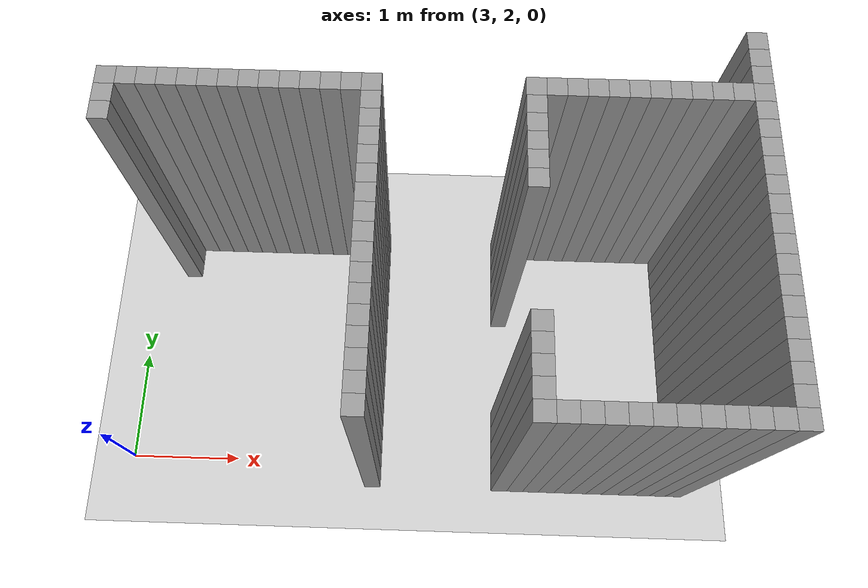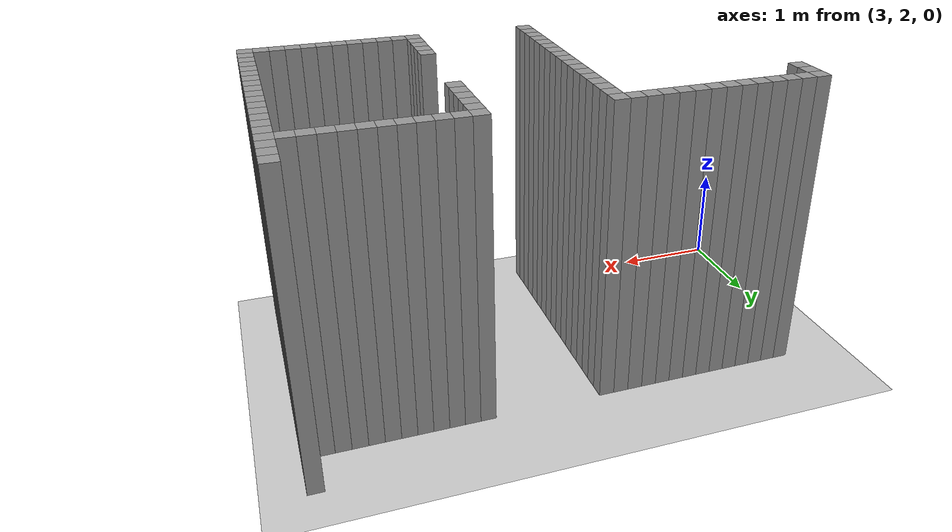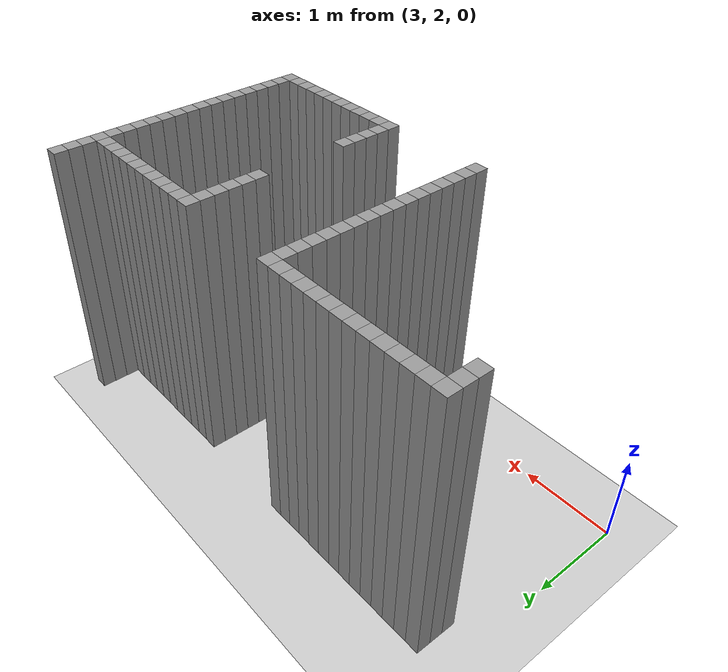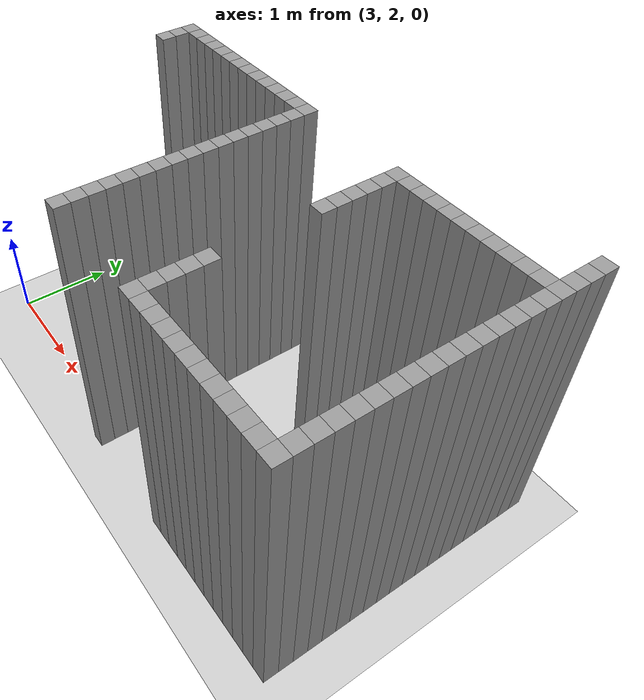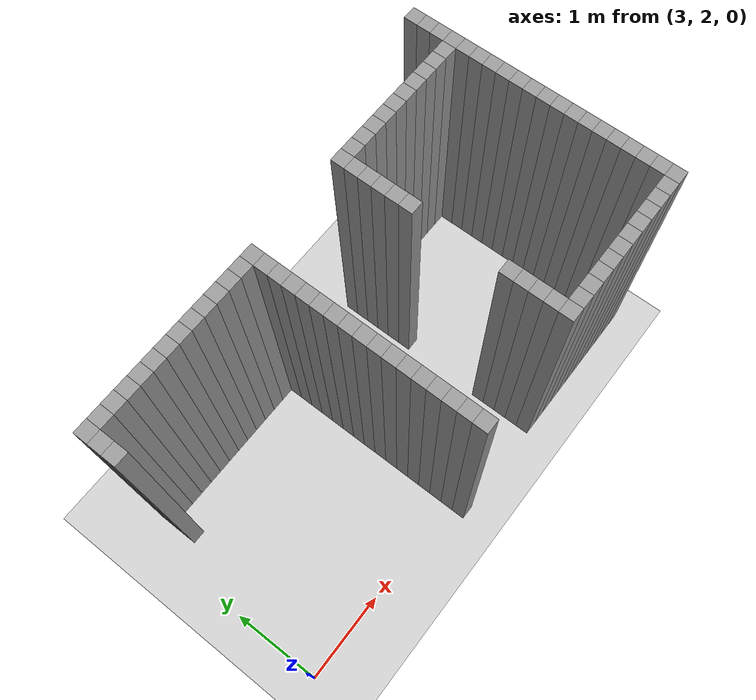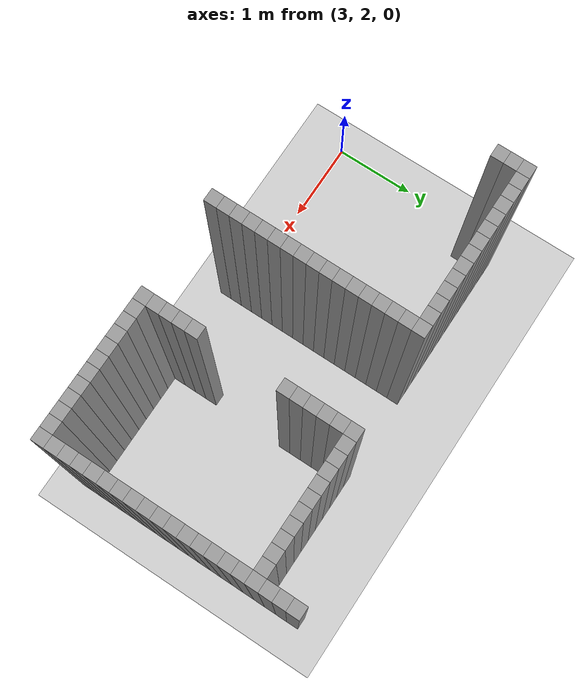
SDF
<sdf version="1.7">
 <world name="default">
  <model name="ground_plane">
   <static>1</static>
   <link name="link">
    <collision name="collision">
     <geometry><plane><normal>0 0 1</normal><size>100 100</size></plane></geometry>
     <surface>
      <contact><collide_bitmask>65535</collide_bitmask></contact>
      <friction><ode><mu>100</mu><mu2>50</mu2></ode></friction>
     </surface>
    </collision>
    <visual name="visual">
     <cast_shadows>0</cast_shadows>
     <geometry><plane><normal>0 0 1</normal><size>100 100</size></plane></geometry>
     <material>
      <script><uri>file://media/materials/scripts/gazebo.material</uri><name>Gazebo/Grey</name></script>
     </material>
    </visual>
   </link>
  </model>
  <model name="image45003">
   <pose>-1 -1 0 0 -0 0</pose>
   <link name="Wall_249">
    <collision name="Wall_249_Collision">
     <geometry><box><size>0.15 0.15 3</size></box></geometry>
     <pose>0 0 1.5 0 -0 0</pose>
    </collision>
    <visual name="Wall_249_Visual">
     <pose>0 0 1.5 0 -0 0</pose>
     <geometry><box><size>0.15 0.15 3</size></box></geometry>
     <material>
      <script><uri>file://media/materials/scripts/gazebo.material</uri><name>Gazebo/Grey</name></script>
      <ambient>1 1 1 1</ambient>
     </material>
     <meta><layer>0</layer></meta>
    </visual>
    <pose>4.35 4.95 0 0 -0 0</pose>
   </link>
   <link name="Wall_250">
    <collision name="Wall_250_Collision">
     <geometry><box><size>0.15 0.15 3</size></box></geometry>
     <pose>0 0 1.5 0 -0 0</pose>
    </collision>
    <visual name="Wall_250_Visual">
     <pose>0 0 1.5 0 -0 0</pose>
     <geometry><box><size>0.15 0.15 3</size></box></geometry>
     <material>
      <script><uri>file://media/materials/scripts/gazebo.material</uri><name>Gazebo/Grey</name></script>
      <ambient>1 1 1 1</ambient>
     </material>
     <meta><layer>0</layer></meta>
    </visual>
    <pose>4.35 5.1 0 0 -0 0</pose>
   </link>
   <link name="Wall_251">
    <collision name="Wall_251_Collision">
     <geometry><box><size>0.15 0.15 3</size></box></geometry>
     <pose>0 0 1.5 0 -0 0</pose>
    </collision>
    <visual name="Wall_251_Visual">
     <pose>0 0 1.5 0 -0 0</pose>
     <geometry><box><size>0.15 0.15 3</size></box></geometry>
     <material>
      <script><uri>file://media/materials/scripts/gazebo.material</uri><name>Gazebo/Grey</name></script>
      <ambient>1 1 1 1</ambient>
     </material>
     <meta><layer>0</layer></meta>
    </visual>
    <pose>4.35 5.25 0 0 -0 0</pose>
   </link>
   <link name="Wall_257">
    <collision name="Wall_257_Collision">
     <geometry><box><size>0.15 0.15 3</size></box></geometry>
     <pose>0 0 1.5 0 -0 0</pose>
    </collision>
    <visual name="Wall_257_Visual">
     <pose>0 0 1.5 0 -0 0</pose>
     <geometry><box><size>0.15 0.15 3</size></box></geometry>
     <material>
      <script><uri>file://media/materials/scripts/gazebo.material</uri><name>Gazebo/Grey</name></script>
      <ambient>1 1 1 1</ambient>
     </material>
     <meta><layer>0</layer></meta>
    </visual>
    <pose>4.5 5.25 0 0 -0 0</pose>
   </link>
   <link name="Wall_263">
    <collision name="Wall_263_Collision">
     <geometry><box><size>0.15 0.15 3</size></box></geometry>
     <pose>0 0 1.5 0 -0 0</pose>
    </collision>
    <visual name="Wall_263_Visual">
     <pose>0 0 1.5 0 -0 0</pose>
     <geometry><box><size>0.15 0.15 3</size></box></geometry>
     <material>
      <script><uri>file://media/materials/scripts/gazebo.material</uri><name>Gazebo/Grey</name></script>
      <ambient>1 1 1 1</ambient>
     </material>
     <meta><layer>0</layer></meta>
    </visual>
    <pose>4.6499999999999995 5.25 0 0 -0 0</pose>
   </link>
   <link name="Wall_268">
    <collision name="Wall_268_Collision">
     <geometry><box><size>0.15 0.15 3</size></box></geometry>
     <pose>0 0 1.5 0 -0 0</pose>
    </collision>
    <visual name="Wall_268_Visual">
     <pose>0 0 1.5 0 -0 0</pose>
     <geometry><box><size>0.15 0.15 3</size></box></geometry>
     <material>
      <script><uri>file://media/materials/scripts/gazebo.material</uri><name>Gazebo/Grey</name></script>
      <ambient>1 1 1 1</ambient>
     </material>
     <meta><layer>0</layer></meta>
    </visual>
    <pose>4.8 5.25 0 0 -0 0</pose>
   </link>
   <link name="Wall_273">
    <collision name="Wall_273_Collision">
     <geometry><box><size>0.15 0.15 3</size></box></geometry>
     <pose>0 0 1.5 0 -0 0</pose>
    </collision>
    <visual name="Wall_273_Visual">
     <pose>0 0 1.5 0 -0 0</pose>
     <geometry><box><size>0.15 0.15 3</size></box></geometry>
     <material>
      <script><uri>file://media/materials/scripts/gazebo.material</uri><name>Gazebo/Grey</name></script>
      <ambient>1 1 1 1</ambient>
     </material>
     <meta><layer>0</layer></meta>
    </visual>
    <pose>4.95 5.25 0 0 -0 0</pose>
   </link>
   <link name="Wall_278">
    <collision name="Wall_278_Collision">
     <geometry><box><size>0.15 0.15 3</size></box></geometry>
     <pose>0 0 1.5 0 -0 0</pose>
    </collision>
    <visual name="Wall_278_Visual">
     <pose>0 0 1.5 0 -0 0</pose>
     <geometry><box><size>0.15 0.15 3</size></box></geometry>
     <material>
      <script><uri>file://media/materials/scripts/gazebo.material</uri><name>Gazebo/Grey</name></script>
      <ambient>1 1 1 1</ambient>
     </material>
     <meta><layer>0</layer></meta>
    </visual>
    <pose>5.1 5.25 0 0 -0 0</pose>
   </link>
   <link name="Wall_282">
    <collision name="Wall_282_Collision">
     <geometry><box><size>0.15 0.15 3</size></box></geometry>
     <pose>0 0 1.5 0 -0 0</pose>
    </collision>
    <visual name="Wall_282_Visual">
     <pose>0 0 1.5 0 -0 0</pose>
     <geometry><box><size>0.15 0.15 3</size></box></geometry>
     <material>
      <script><uri>file://media/materials/scripts/gazebo.material</uri><name>Gazebo/Grey</name></script>
      <ambient>1 1 1 1</ambient>
     </material>
     <meta><layer>0</layer></meta>
    </visual>
    <pose>5.25 5.25 0 0 -0 0</pose>
   </link>
   <link name="Wall_285">
    <collision name="Wall_285_Collision">
     <geometry><box><size>0.15 0.15 3</size></box></geometry>
     <pose>0 0 1.5 0 -0 0</pose>
    </collision>
    <visual name="Wall_285_Visual">
     <pose>0 0 1.5 0 -0 0</pose>
     <geometry><box><size>0.15 0.15 3</size></box></geometry>
     <material>
      <script><uri>file://media/materials/scripts/gazebo.material</uri><name>Gazebo/Grey</name></script>
      <ambient>1 1 1 1</ambient>
     </material>
     <meta><layer>0</layer></meta>
    </visual>
    <pose>5.3999999999999995 5.25 0 0 -0 0</pose>
   </link>
   <link name="Wall_288">
    <collision name="Wall_288_Collision">
     <geometry><box><size>0.15 0.15 3</size></box></geometry>
     <pose>0 0 1.5 0 -0 0</pose>
    </collision>
    <visual name="Wall_288_Visual">
     <pose>0 0 1.5 0 -0 0</pose>
     <geometry><box><size>0.15 0.15 3</size></box></geometry>
     <material>
      <script><uri>file://media/materials/scripts/gazebo.material</uri><name>Gazebo/Grey</name></script>
      <ambient>1 1 1 1</ambient>
     </material>
     <meta><layer>0</layer></meta>
    </visual>
    <pose>5.55 5.25 0 0 -0 0</pose>
   </link>
   <link name="Wall_292">
    <collision name="Wall_292_Collision">
     <geometry><box><size>0.15 0.15 3</size></box></geometry>
     <pose>0 0 1.5 0 -0 0</pose>
    </collision>
    <visual name="Wall_292_Visual">
     <pose>0 0 1.5 0 -0 0</pose>
     <geometry><box><size>0.15 0.15 3</size></box></geometry>
     <material>
      <script><uri>file://media/materials/scripts/gazebo.material</uri><name>Gazebo/Grey</name></script>
      <ambient>1 1 1 1</ambient>
     </material>
     <meta><layer>0</layer></meta>
    </visual>
    <pose>5.7 5.25 0 0 -0 0</pose>
   </link>
   <link name="Wall_296">
    <collision name="Wall_296_Collision">
     <geometry><box><size>0.15 0.15 3</size></box></geometry>
     <pose>0 0 1.5 0 -0 0</pose>
    </collision>
    <visual name="Wall_296_Visual">
     <pose>0 0 1.5 0 -0 0</pose>
     <geometry><box><size>0.15 0.15 3</size></box></geometry>
     <material>
      <script><uri>file://media/materials/scripts/gazebo.material</uri><name>Gazebo/Grey</name></script>
      <ambient>1 1 1 1</ambient>
     </material>
     <meta><layer>0</layer></meta>
    </visual>
    <pose>5.85 5.25 0 0 -0 0</pose>
   </link>
   <link name="Wall_300">
    <collision name="Wall_300_Collision">
     <geometry><box><size>0.15 0.15 3</size></box></geometry>
     <pose>0 0 1.5 0 -0 0</pose>
    </collision>
    <visual name="Wall_300_Visual">
     <pose>0 0 1.5 0 -0 0</pose>
     <geometry><box><size>0.15 0.15 3</size></box></geometry>
     <material>
      <script><uri>file://media/materials/scripts/gazebo.material</uri><name>Gazebo/Grey</name></script>
      <ambient>1 1 1 1</ambient>
     </material>
     <meta><layer>0</layer></meta>
    </visual>
    <pose>6.0 5.25 0 0 -0 0</pose>
   </link>
   <link name="Wall_304">
    <collision name="Wall_304_Collision">
     <geometry><box><size>0.15 0.15 3</size></box></geometry>
     <pose>0 0 1.5 0 -0 0</pose>
    </collision>
    <visual name="Wall_304_Visual">
     <pose>0 0 1.5 0 -0 0</pose>
     <geometry><box><size>0.15 0.15 3</size></box></geometry>
     <material>
      <script><uri>file://media/materials/scripts/gazebo.material</uri><name>Gazebo/Grey</name></script>
      <ambient>1 1 1 1</ambient>
     </material>
     <meta><layer>0</layer></meta>
    </visual>
    <pose>6.1499999999999995 5.25 0 0 -0 0</pose>
   </link>
   <link name="Wall_308">
    <collision name="Wall_308_Collision">
     <geometry><box><size>0.15 0.15 3</size></box></geometry>
     <pose>0 0 1.5 0 -0 0</pose>
    </collision>
    <visual name="Wall_308_Visual">
     <pose>0 0 1.5 0 -0 0</pose>
     <geometry><box><size>0.15 0.15 3</size></box></geometry>
     <material>
      <script><uri>file://media/materials/scripts/gazebo.material</uri><name>Gazebo/Grey</name></script>
      <ambient>1 1 1 1</ambient>
     </material>
     <meta><layer>0</layer></meta>
    </visual>
    <pose>6.3 2.85 0 0 -0 0</pose>
   </link>
   <link name="Wall_309">
    <collision name="Wall_309_Collision">
     <geometry><box><size>0.15 0.15 3</size></box></geometry>
     <pose>0 0 1.5 0 -0 0</pose>
    </collision>
    <visual name="Wall_309_Visual">
     <pose>0 0 1.5 0 -0 0</pose>
     <geometry><box><size>0.15 0.15 3</size></box></geometry>
     <material>
      <script><uri>file://media/materials/scripts/gazebo.material</uri><name>Gazebo/Grey</name></script>
      <ambient>1 1 1 1</ambient>
     </material>
     <meta><layer>0</layer></meta>
    </visual>
    <pose>6.3 3.0 0 0 -0 0</pose>
   </link>
   <link name="Wall_310">
    <collision name="Wall_310_Collision">
     <geometry><box><size>0.15 0.15 3</size></box></geometry>
     <pose>0 0 1.5 0 -0 0</pose>
    </collision>
    <visual name="Wall_310_Visual">
     <pose>0 0 1.5 0 -0 0</pose>
     <geometry><box><size>0.15 0.15 3</size></box></geometry>
     <material>
      <script><uri>file://media/materials/scripts/gazebo.material</uri><name>Gazebo/Grey</name></script>
      <ambient>1 1 1 1</ambient>
     </material>
     <meta><layer>0</layer></meta>
    </visual>
    <pose>6.3 3.15 0 0 -0 0</pose>
   </link>
   <link name="Wall_311">
    <collision name="Wall_311_Collision">
     <geometry><box><size>0.15 0.15 3</size></box></geometry>
     <pose>0 0 1.5 0 -0 0</pose>
    </collision>
    <visual name="Wall_311_Visual">
     <pose>0 0 1.5 0 -0 0</pose>
     <geometry><box><size>0.15 0.15 3</size></box></geometry>
     <material>
      <script><uri>file://media/materials/scripts/gazebo.material</uri><name>Gazebo/Grey</name></script>
      <ambient>1 1 1 1</ambient>
     </material>
     <meta><layer>0</layer></meta>
    </visual>
    <pose>6.3 3.3 0 0 -0 0</pose>
   </link>
   <link name="Wall_312">
    <collision name="Wall_312_Collision">
     <geometry><box><size>0.15 0.15 3</size></box></geometry>
     <pose>0 0 1.5 0 -0 0</pose>
    </collision>
    <visual name="Wall_312_Visual">
     <pose>0 0 1.5 0 -0 0</pose>
     <geometry><box><size>0.15 0.15 3</size></box></geometry>
     <material>
      <script><uri>file://media/materials/scripts/gazebo.material</uri><name>Gazebo/Grey</name></script>
      <ambient>1 1 1 1</ambient>
     </material>
     <meta><layer>0</layer></meta>
    </visual>
    <pose>6.3 3.4499999999999997 0 0 -0 0</pose>
   </link>
   <link name="Wall_313">
    <collision name="Wall_313_Collision">
     <geometry><box><size>0.15 0.15 3</size></box></geometry>
     <pose>0 0 1.5 0 -0 0</pose>
    </collision>
    <visual name="Wall_313_Visual">
     <pose>0 0 1.5 0 -0 0</pose>
     <geometry><box><size>0.15 0.15 3</size></box></geometry>
     <material>
      <script><uri>file://media/materials/scripts/gazebo.material</uri><name>Gazebo/Grey</name></script>
      <ambient>1 1 1 1</ambient>
     </material>
     <meta><layer>0</layer></meta>
    </visual>
    <pose>6.3 3.5999999999999996 0 0 -0 0</pose>
   </link>
   <link name="Wall_314">
    <collision name="Wall_314_Collision">
     <geometry><box><size>0.15 0.15 3</size></box></geometry>
     <pose>0 0 1.5 0 -0 0</pose>
    </collision>
    <visual name="Wall_314_Visual">
     <pose>0 0 1.5 0 -0 0</pose>
     <geometry><box><size>0.15 0.15 3</size></box></geometry>
     <material>
      <script><uri>file://media/materials/scripts/gazebo.material</uri><name>Gazebo/Grey</name></script>
      <ambient>1 1 1 1</ambient>
     </material>
     <meta><layer>0</layer></meta>
    </visual>
    <pose>6.3 3.75 0 0 -0 0</pose>
   </link>
   <link name="Wall_315">
    <collision name="Wall_315_Collision">
     <geometry><box><size>0.15 0.15 3</size></box></geometry>
     <pose>0 0 1.5 0 -0 0</pose>
    </collision>
    <visual name="Wall_315_Visual">
     <pose>0 0 1.5 0 -0 0</pose>
     <geometry><box><size>0.15 0.15 3</size></box></geometry>
     <material>
      <script><uri>file://media/materials/scripts/gazebo.material</uri><name>Gazebo/Grey</name></script>
      <ambient>1 1 1 1</ambient>
     </material>
     <meta><layer>0</layer></meta>
    </visual>
    <pose>6.3 3.9 0 0 -0 0</pose>
   </link>
   <link name="Wall_316">
    <collision name="Wall_316_Collision">
     <geometry><box><size>0.15 0.15 3</size></box></geometry>
     <pose>0 0 1.5 0 -0 0</pose>
    </collision>
    <visual name="Wall_316_Visual">
     <pose>0 0 1.5 0 -0 0</pose>
     <geometry><box><size>0.15 0.15 3</size></box></geometry>
     <material>
      <script><uri>file://media/materials/scripts/gazebo.material</uri><name>Gazebo/Grey</name></script>
      <ambient>1 1 1 1</ambient>
     </material>
     <meta><layer>0</layer></meta>
    </visual>
    <pose>6.3 4.05 0 0 -0 0</pose>
   </link>
   <link name="Wall_317">
    <collision name="Wall_317_Collision">
     <geometry><box><size>0.15 0.15 3</size></box></geometry>
     <pose>0 0 1.5 0 -0 0</pose>
    </collision>
    <visual name="Wall_317_Visual">
     <pose>0 0 1.5 0 -0 0</pose>
     <geometry><box><size>0.15 0.15 3</size></box></geometry>
     <material>
      <script><uri>file://media/materials/scripts/gazebo.material</uri><name>Gazebo/Grey</name></script>
      <ambient>1 1 1 1</ambient>
     </material>
     <meta><layer>0</layer></meta>
    </visual>
    <pose>6.3 4.2 0 0 -0 0</pose>
   </link>
   <link name="Wall_318">
    <collision name="Wall_318_Collision">
     <geometry><box><size>0.15 0.15 3</size></box></geometry>
     <pose>0 0 1.5 0 -0 0</pose>
    </collision>
    <visual name="Wall_318_Visual">
     <pose>0 0 1.5 0 -0 0</pose>
     <geometry><box><size>0.15 0.15 3</size></box></geometry>
     <material>
      <script><uri>file://media/materials/scripts/gazebo.material</uri><name>Gazebo/Grey</name></script>
      <ambient>1 1 1 1</ambient>
     </material>
     <meta><layer>0</layer></meta>
    </visual>
    <pose>6.3 4.35 0 0 -0 0</pose>
   </link>
   <link name="Wall_319">
    <collision name="Wall_319_Collision">
     <geometry><box><size>0.15 0.15 3</size></box></geometry>
     <pose>0 0 1.5 0 -0 0</pose>
    </collision>
    <visual name="Wall_319_Visual">
     <pose>0 0 1.5 0 -0 0</pose>
     <geometry><box><size>0.15 0.15 3</size></box></geometry>
     <material>
      <script><uri>file://media/materials/scripts/gazebo.material</uri><name>Gazebo/Grey</name></script>
      <ambient>1 1 1 1</ambient>
     </material>
     <meta><layer>0</layer></meta>
    </visual>
    <pose>6.3 4.5 0 0 -0 0</pose>
   </link>
   <link name="Wall_320">
    <collision name="Wall_320_Collision">
     <geometry><box><size>0.15 0.15 3</size></box></geometry>
     <pose>0 0 1.5 0 -0 0</pose>
    </collision>
    <visual name="Wall_320_Visual">
     <pose>0 0 1.5 0 -0 0</pose>
     <geometry><box><size>0.15 0.15 3</size></box></geometry>
     <material>
      <script><uri>file://media/materials/scripts/gazebo.material</uri><name>Gazebo/Grey</name></script>
      <ambient>1 1 1 1</ambient>
     </material>
     <meta><layer>0</layer></meta>
    </visual>
    <pose>6.3 4.6499999999999995 0 0 -0 0</pose>
   </link>
   <link name="Wall_321">
    <collision name="Wall_321_Collision">
     <geometry><box><size>0.15 0.15 3</size></box></geometry>
     <pose>0 0 1.5 0 -0 0</pose>
    </collision>
    <visual name="Wall_321_Visual">
     <pose>0 0 1.5 0 -0 0</pose>
     <geometry><box><size>0.15 0.15 3</size></box></geometry>
     <material>
      <script><uri>file://media/materials/scripts/gazebo.material</uri><name>Gazebo/Grey</name></script>
      <ambient>1 1 1 1</ambient>
     </material>
     <meta><layer>0</layer></meta>
    </visual>
    <pose>6.3 4.8 0 0 -0 0</pose>
   </link>
   <link name="Wall_322">
    <collision name="Wall_322_Collision">
     <geometry><box><size>0.15 0.15 3</size></box></geometry>
     <pose>0 0 1.5 0 -0 0</pose>
    </collision>
    <visual name="Wall_322_Visual">
     <pose>0 0 1.5 0 -0 0</pose>
     <geometry><box><size>0.15 0.15 3</size></box></geometry>
     <material>
      <script><uri>file://media/materials/scripts/gazebo.material</uri><name>Gazebo/Grey</name></script>
      <ambient>1 1 1 1</ambient>
     </material>
     <meta><layer>0</layer></meta>
    </visual>
    <pose>6.3 4.95 0 0 -0 0</pose>
   </link>
   <link name="Wall_323">
    <collision name="Wall_323_Collision">
     <geometry><box><size>0.15 0.15 3</size></box></geometry>
     <pose>0 0 1.5 0 -0 0</pose>
    </collision>
    <visual name="Wall_323_Visual">
     <pose>0 0 1.5 0 -0 0</pose>
     <geometry><box><size>0.15 0.15 3</size></box></geometry>
     <material>
      <script><uri>file://media/materials/scripts/gazebo.material</uri><name>Gazebo/Grey</name></script>
      <ambient>1 1 1 1</ambient>
     </material>
     <meta><layer>0</layer></meta>
    </visual>
    <pose>6.3 5.1 0 0 -0 0</pose>
   </link>
   <link name="Wall_324">
    <collision name="Wall_324_Collision">
     <geometry><box><size>0.15 0.15 3</size></box></geometry>
     <pose>0 0 1.5 0 -0 0</pose>
    </collision>
    <visual name="Wall_324_Visual">
     <pose>0 0 1.5 0 -0 0</pose>
     <geometry><box><size>0.15 0.15 3</size></box></geometry>
     <material>
      <script><uri>file://media/materials/scripts/gazebo.material</uri><name>Gazebo/Grey</name></script>
      <ambient>1 1 1 1</ambient>
     </material>
     <meta><layer>0</layer></meta>
    </visual>
    <pose>6.3 5.25 0 0 -0 0</pose>
   </link>
   <link name="Wall_376">
    <collision name="Wall_376_Collision">
     <geometry><box><size>0.15 0.15 3</size></box></geometry>
     <pose>0 0 1.5 0 -0 0</pose>
    </collision>
    <visual name="Wall_376_Visual">
     <pose>0 0 1.5 0 -0 0</pose>
     <geometry><box><size>0.15 0.15 3</size></box></geometry>
     <material>
      <script><uri>file://media/materials/scripts/gazebo.material</uri><name>Gazebo/Grey</name></script>
      <ambient>1 1 1 1</ambient>
     </material>
     <meta><layer>0</layer></meta>
    </visual>
    <pose>7.5 2.85 0 0 -0 0</pose>
   </link>
   <link name="Wall_377">
    <collision name="Wall_377_Collision">
     <geometry><box><size>0.15 0.15 3</size></box></geometry>
     <pose>0 0 1.5 0 -0 0</pose>
    </collision>
    <visual name="Wall_377_Visual">
     <pose>0 0 1.5 0 -0 0</pose>
     <geometry><box><size>0.15 0.15 3</size></box></geometry>
     <material>
      <script><uri>file://media/materials/scripts/gazebo.material</uri><name>Gazebo/Grey</name></script>
      <ambient>1 1 1 1</ambient>
     </material>
     <meta><layer>0</layer></meta>
    </visual>
    <pose>7.5 3.0 0 0 -0 0</pose>
   </link>
   <link name="Wall_378">
    <collision name="Wall_378_Collision">
     <geometry><box><size>0.15 0.15 3</size></box></geometry>
     <pose>0 0 1.5 0 -0 0</pose>
    </collision>
    <visual name="Wall_378_Visual">
     <pose>0 0 1.5 0 -0 0</pose>
     <geometry><box><size>0.15 0.15 3</size></box></geometry>
     <material>
      <script><uri>file://media/materials/scripts/gazebo.material</uri><name>Gazebo/Grey</name></script>
      <ambient>1 1 1 1</ambient>
     </material>
     <meta><layer>0</layer></meta>
    </visual>
    <pose>7.5 3.15 0 0 -0 0</pose>
   </link>
   <link name="Wall_379">
    <collision name="Wall_379_Collision">
     <geometry><box><size>0.15 0.15 3</size></box></geometry>
     <pose>0 0 1.5 0 -0 0</pose>
    </collision>
    <visual name="Wall_379_Visual">
     <pose>0 0 1.5 0 -0 0</pose>
     <geometry><box><size>0.15 0.15 3</size></box></geometry>
     <material>
      <script><uri>file://media/materials/scripts/gazebo.material</uri><name>Gazebo/Grey</name></script>
      <ambient>1 1 1 1</ambient>
     </material>
     <meta><layer>0</layer></meta>
    </visual>
    <pose>7.5 3.3 0 0 -0 0</pose>
   </link>
   <link name="Wall_380">
    <collision name="Wall_380_Collision">
     <geometry><box><size>0.15 0.15 3</size></box></geometry>
     <pose>0 0 1.5 0 -0 0</pose>
    </collision>
    <visual name="Wall_380_Visual">
     <pose>0 0 1.5 0 -0 0</pose>
     <geometry><box><size>0.15 0.15 3</size></box></geometry>
     <material>
      <script><uri>file://media/materials/scripts/gazebo.material</uri><name>Gazebo/Grey</name></script>
      <ambient>1 1 1 1</ambient>
     </material>
     <meta><layer>0</layer></meta>
    </visual>
    <pose>7.5 3.4499999999999997 0 0 -0 0</pose>
   </link>
   <link name="Wall_381">
    <collision name="Wall_381_Collision">
     <geometry><box><size>0.15 0.15 3</size></box></geometry>
     <pose>0 0 1.5 0 -0 0</pose>
    </collision>
    <visual name="Wall_381_Visual">
     <pose>0 0 1.5 0 -0 0</pose>
     <geometry><box><size>0.15 0.15 3</size></box></geometry>
     <material>
      <script><uri>file://media/materials/scripts/gazebo.material</uri><name>Gazebo/Grey</name></script>
      <ambient>1 1 1 1</ambient>
     </material>
     <meta><layer>0</layer></meta>
    </visual>
    <pose>7.5 4.5 0 0 -0 0</pose>
   </link>
   <link name="Wall_382">
    <collision name="Wall_382_Collision">
     <geometry><box><size>0.15 0.15 3</size></box></geometry>
     <pose>0 0 1.5 0 -0 0</pose>
    </collision>
    <visual name="Wall_382_Visual">
     <pose>0 0 1.5 0 -0 0</pose>
     <geometry><box><size>0.15 0.15 3</size></box></geometry>
     <material>
      <script><uri>file://media/materials/scripts/gazebo.material</uri><name>Gazebo/Grey</name></script>
      <ambient>1 1 1 1</ambient>
     </material>
     <meta><layer>0</layer></meta>
    </visual>
    <pose>7.5 4.6499999999999995 0 0 -0 0</pose>
   </link>
   <link name="Wall_383">
    <collision name="Wall_383_Collision">
     <geometry><box><size>0.15 0.15 3</size></box></geometry>
     <pose>0 0 1.5 0 -0 0</pose>
    </collision>
    <visual name="Wall_383_Visual">
     <pose>0 0 1.5 0 -0 0</pose>
     <geometry><box><size>0.15 0.15 3</size></box></geometry>
     <material>
      <script><uri>file://media/materials/scripts/gazebo.material</uri><name>Gazebo/Grey</name></script>
      <ambient>1 1 1 1</ambient>
     </material>
     <meta><layer>0</layer></meta>
    </visual>
    <pose>7.5 4.8 0 0 -0 0</pose>
   </link>
   <link name="Wall_384">
    <collision name="Wall_384_Collision">
     <geometry><box><size>0.15 0.15 3</size></box></geometry>
     <pose>0 0 1.5 0 -0 0</pose>
    </collision>
    <visual name="Wall_384_Visual">
     <pose>0 0 1.5 0 -0 0</pose>
     <geometry><box><size>0.15 0.15 3</size></box></geometry>
     <material>
      <script><uri>file://media/materials/scripts/gazebo.material</uri><name>Gazebo/Grey</name></script>
      <ambient>1 1 1 1</ambient>
     </material>
     <meta><layer>0</layer></meta>
    </visual>
    <pose>7.5 4.95 0 0 -0 0</pose>
   </link>
   <link name="Wall_385">
    <collision name="Wall_385_Collision">
     <geometry><box><size>0.15 0.15 3</size></box></geometry>
     <pose>0 0 1.5 0 -0 0</pose>
    </collision>
    <visual name="Wall_385_Visual">
     <pose>0 0 1.5 0 -0 0</pose>
     <geometry><box><size>0.15 0.15 3</size></box></geometry>
     <material>
      <script><uri>file://media/materials/scripts/gazebo.material</uri><name>Gazebo/Grey</name></script>
      <ambient>1 1 1 1</ambient>
     </material>
     <meta><layer>0</layer></meta>
    </visual>
    <pose>7.5 5.1 0 0 -0 0</pose>
   </link>
   <link name="Wall_386">
    <collision name="Wall_386_Collision">
     <geometry><box><size>0.15 0.15 3</size></box></geometry>
     <pose>0 0 1.5 0 -0 0</pose>
    </collision>
    <visual name="Wall_386_Visual">
     <pose>0 0 1.5 0 -0 0</pose>
     <geometry><box><size>0.15 0.15 3</size></box></geometry>
     <material>
      <script><uri>file://media/materials/scripts/gazebo.material</uri><name>Gazebo/Grey</name></script>
      <ambient>1 1 1 1</ambient>
     </material>
     <meta><layer>0</layer></meta>
    </visual>
    <pose>7.5 5.25 0 0 -0 0</pose>
   </link>
   <link name="Wall_389">
    <collision name="Wall_389_Collision">
     <geometry><box><size>0.15 0.15 3</size></box></geometry>
     <pose>0 0 1.5 0 -0 0</pose>
    </collision>
    <visual name="Wall_389_Visual">
     <pose>0 0 1.5 0 -0 0</pose>
     <geometry><box><size>0.15 0.15 3</size></box></geometry>
     <material>
      <script><uri>file://media/materials/scripts/gazebo.material</uri><name>Gazebo/Grey</name></script>
      <ambient>1 1 1 1</ambient>
     </material>
     <meta><layer>0</layer></meta>
    </visual>
    <pose>7.6499999999999995 2.85 0 0 -0 0</pose>
   </link>
   <link name="Wall_390">
    <collision name="Wall_390_Collision">
     <geometry><box><size>0.15 0.15 3</size></box></geometry>
     <pose>0 0 1.5 0 -0 0</pose>
    </collision>
    <visual name="Wall_390_Visual">
     <pose>0 0 1.5 0 -0 0</pose>
     <geometry><box><size>0.15 0.15 3</size></box></geometry>
     <material>
      <script><uri>file://media/materials/scripts/gazebo.material</uri><name>Gazebo/Grey</name></script>
      <ambient>1 1 1 1</ambient>
     </material>
     <meta><layer>0</layer></meta>
    </visual>
    <pose>7.6499999999999995 5.25 0 0 -0 0</pose>
   </link>
   <link name="Wall_393">
    <collision name="Wall_393_Collision">
     <geometry><box><size>0.15 0.15 3</size></box></geometry>
     <pose>0 0 1.5 0 -0 0</pose>
    </collision>
    <visual name="Wall_393_Visual">
     <pose>0 0 1.5 0 -0 0</pose>
     <geometry><box><size>0.15 0.15 3</size></box></geometry>
     <material>
      <script><uri>file://media/materials/scripts/gazebo.material</uri><name>Gazebo/Grey</name></script>
      <ambient>1 1 1 1</ambient>
     </material>
     <meta><layer>0</layer></meta>
    </visual>
    <pose>7.8 2.85 0 0 -0 0</pose>
   </link>
   <link name="Wall_394">
    <collision name="Wall_394_Collision">
     <geometry><box><size>0.15 0.15 3</size></box></geometry>
     <pose>0 0 1.5 0 -0 0</pose>
    </collision>
    <visual name="Wall_394_Visual">
     <pose>0 0 1.5 0 -0 0</pose>
     <geometry><box><size>0.15 0.15 3</size></box></geometry>
     <material>
      <script><uri>file://media/materials/scripts/gazebo.material</uri><name>Gazebo/Grey</name></script>
      <ambient>1 1 1 1</ambient>
     </material>
     <meta><layer>0</layer></meta>
    </visual>
    <pose>7.8 5.25 0 0 -0 0</pose>
   </link>
   <link name="Wall_397">
    <collision name="Wall_397_Collision">
     <geometry><box><size>0.15 0.15 3</size></box></geometry>
     <pose>0 0 1.5 0 -0 0</pose>
    </collision>
    <visual name="Wall_397_Visual">
     <pose>0 0 1.5 0 -0 0</pose>
     <geometry><box><size>0.15 0.15 3</size></box></geometry>
     <material>
      <script><uri>file://media/materials/scripts/gazebo.material</uri><name>Gazebo/Grey</name></script>
      <ambient>1 1 1 1</ambient>
     </material>
     <meta><layer>0</layer></meta>
    </visual>
    <pose>7.949999999999999 2.85 0 0 -0 0</pose>
   </link>
   <link name="Wall_398">
    <collision name="Wall_398_Collision">
     <geometry><box><size>0.15 0.15 3</size></box></geometry>
     <pose>0 0 1.5 0 -0 0</pose>
    </collision>
    <visual name="Wall_398_Visual">
     <pose>0 0 1.5 0 -0 0</pose>
     <geometry><box><size>0.15 0.15 3</size></box></geometry>
     <material>
      <script><uri>file://media/materials/scripts/gazebo.material</uri><name>Gazebo/Grey</name></script>
      <ambient>1 1 1 1</ambient>
     </material>
     <meta><layer>0</layer></meta>
    </visual>
    <pose>7.949999999999999 5.25 0 0 -0 0</pose>
   </link>
   <link name="Wall_401">
    <collision name="Wall_401_Collision">
     <geometry><box><size>0.15 0.15 3</size></box></geometry>
     <pose>0 0 1.5 0 -0 0</pose>
    </collision>
    <visual name="Wall_401_Visual">
     <pose>0 0 1.5 0 -0 0</pose>
     <geometry><box><size>0.15 0.15 3</size></box></geometry>
     <material>
      <script><uri>file://media/materials/scripts/gazebo.material</uri><name>Gazebo/Grey</name></script>
      <ambient>1 1 1 1</ambient>
     </material>
     <meta><layer>0</layer></meta>
    </visual>
    <pose>8.1 2.85 0 0 -0 0</pose>
   </link>
   <link name="Wall_402">
    <collision name="Wall_402_Collision">
     <geometry><box><size>0.15 0.15 3</size></box></geometry>
     <pose>0 0 1.5 0 -0 0</pose>
    </collision>
    <visual name="Wall_402_Visual">
     <pose>0 0 1.5 0 -0 0</pose>
     <geometry><box><size>0.15 0.15 3</size></box></geometry>
     <material>
      <script><uri>file://media/materials/scripts/gazebo.material</uri><name>Gazebo/Grey</name></script>
      <ambient>1 1 1 1</ambient>
     </material>
     <meta><layer>0</layer></meta>
    </visual>
    <pose>8.1 5.25 0 0 -0 0</pose>
   </link>
   <link name="Wall_405">
    <collision name="Wall_405_Collision">
     <geometry><box><size>0.15 0.15 3</size></box></geometry>
     <pose>0 0 1.5 0 -0 0</pose>
    </collision>
    <visual name="Wall_405_Visual">
     <pose>0 0 1.5 0 -0 0</pose>
     <geometry><box><size>0.15 0.15 3</size></box></geometry>
     <material>
      <script><uri>file://media/materials/scripts/gazebo.material</uri><name>Gazebo/Grey</name></script>
      <ambient>1 1 1 1</ambient>
     </material>
     <meta><layer>0</layer></meta>
    </visual>
    <pose>8.25 2.85 0 0 -0 0</pose>
   </link>
   <link name="Wall_406">
    <collision name="Wall_406_Collision">
     <geometry><box><size>0.15 0.15 3</size></box></geometry>
     <pose>0 0 1.5 0 -0 0</pose>
    </collision>
    <visual name="Wall_406_Visual">
     <pose>0 0 1.5 0 -0 0</pose>
     <geometry><box><size>0.15 0.15 3</size></box></geometry>
     <material>
      <script><uri>file://media/materials/scripts/gazebo.material</uri><name>Gazebo/Grey</name></script>
      <ambient>1 1 1 1</ambient>
     </material>
     <meta><layer>0</layer></meta>
    </visual>
    <pose>8.25 5.25 0 0 -0 0</pose>
   </link>
   <link name="Wall_409">
    <collision name="Wall_409_Collision">
     <geometry><box><size>0.15 0.15 3</size></box></geometry>
     <pose>0 0 1.5 0 -0 0</pose>
    </collision>
    <visual name="Wall_409_Visual">
     <pose>0 0 1.5 0 -0 0</pose>
     <geometry><box><size>0.15 0.15 3</size></box></geometry>
     <material>
      <script><uri>file://media/materials/scripts/gazebo.material</uri><name>Gazebo/Grey</name></script>
      <ambient>1 1 1 1</ambient>
     </material>
     <meta><layer>0</layer></meta>
    </visual>
    <pose>8.4 2.85 0 0 -0 0</pose>
   </link>
   <link name="Wall_410">
    <collision name="Wall_410_Collision">
     <geometry><box><size>0.15 0.15 3</size></box></geometry>
     <pose>0 0 1.5 0 -0 0</pose>
    </collision>
    <visual name="Wall_410_Visual">
     <pose>0 0 1.5 0 -0 0</pose>
     <geometry><box><size>0.15 0.15 3</size></box></geometry>
     <material>
      <script><uri>file://media/materials/scripts/gazebo.material</uri><name>Gazebo/Grey</name></script>
      <ambient>1 1 1 1</ambient>
     </material>
     <meta><layer>0</layer></meta>
    </visual>
    <pose>8.4 5.25 0 0 -0 0</pose>
   </link>
   <link name="Wall_415">
    <collision name="Wall_415_Collision">
     <geometry><box><size>0.15 0.15 3</size></box></geometry>
     <pose>0 0 1.5 0 -0 0</pose>
    </collision>
    <visual name="Wall_415_Visual">
     <pose>0 0 1.5 0 -0 0</pose>
     <geometry><box><size>0.15 0.15 3</size></box></geometry>
     <material>
      <script><uri>file://media/materials/scripts/gazebo.material</uri><name>Gazebo/Grey</name></script>
      <ambient>1 1 1 1</ambient>
     </material>
     <meta><layer>0</layer></meta>
    </visual>
    <pose>8.549999999999999 2.85 0 0 -0 0</pose>
   </link>
   <link name="Wall_416">
    <collision name="Wall_416_Collision">
     <geometry><box><size>0.15 0.15 3</size></box></geometry>
     <pose>0 0 1.5 0 -0 0</pose>
    </collision>
    <visual name="Wall_416_Visual">
     <pose>0 0 1.5 0 -0 0</pose>
     <geometry><box><size>0.15 0.15 3</size></box></geometry>
     <material>
      <script><uri>file://media/materials/scripts/gazebo.material</uri><name>Gazebo/Grey</name></script>
      <ambient>1 1 1 1</ambient>
     </material>
     <meta><layer>0</layer></meta>
    </visual>
    <pose>8.549999999999999 5.25 0 0 -0 0</pose>
   </link>
   <link name="Wall_421">
    <collision name="Wall_421_Collision">
     <geometry><box><size>0.15 0.15 3</size></box></geometry>
     <pose>0 0 1.5 0 -0 0</pose>
    </collision>
    <visual name="Wall_421_Visual">
     <pose>0 0 1.5 0 -0 0</pose>
     <geometry><box><size>0.15 0.15 3</size></box></geometry>
     <material>
      <script><uri>file://media/materials/scripts/gazebo.material</uri><name>Gazebo/Grey</name></script>
      <ambient>1 1 1 1</ambient>
     </material>
     <meta><layer>0</layer></meta>
    </visual>
    <pose>8.7 2.85 0 0 -0 0</pose>
   </link>
   <link name="Wall_422">
    <collision name="Wall_422_Collision">
     <geometry><box><size>0.15 0.15 3</size></box></geometry>
     <pose>0 0 1.5 0 -0 0</pose>
    </collision>
    <visual name="Wall_422_Visual">
     <pose>0 0 1.5 0 -0 0</pose>
     <geometry><box><size>0.15 0.15 3</size></box></geometry>
     <material>
      <script><uri>file://media/materials/scripts/gazebo.material</uri><name>Gazebo/Grey</name></script>
      <ambient>1 1 1 1</ambient>
     </material>
     <meta><layer>0</layer></meta>
    </visual>
    <pose>8.7 5.25 0 0 -0 0</pose>
   </link>
   <link name="Wall_427">
    <collision name="Wall_427_Collision">
     <geometry><box><size>0.15 0.15 3</size></box></geometry>
     <pose>0 0 1.5 0 -0 0</pose>
    </collision>
    <visual name="Wall_427_Visual">
     <pose>0 0 1.5 0 -0 0</pose>
     <geometry><box><size>0.15 0.15 3</size></box></geometry>
     <material>
      <script><uri>file://media/materials/scripts/gazebo.material</uri><name>Gazebo/Grey</name></script>
      <ambient>1 1 1 1</ambient>
     </material>
     <meta><layer>0</layer></meta>
    </visual>
    <pose>8.85 2.85 0 0 -0 0</pose>
   </link>
   <link name="Wall_428">
    <collision name="Wall_428_Collision">
     <geometry><box><size>0.15 0.15 3</size></box></geometry>
     <pose>0 0 1.5 0 -0 0</pose>
    </collision>
    <visual name="Wall_428_Visual">
     <pose>0 0 1.5 0 -0 0</pose>
     <geometry><box><size>0.15 0.15 3</size></box></geometry>
     <material>
      <script><uri>file://media/materials/scripts/gazebo.material</uri><name>Gazebo/Grey</name></script>
      <ambient>1 1 1 1</ambient>
     </material>
     <meta><layer>0</layer></meta>
    </visual>
    <pose>8.85 5.25 0 0 -0 0</pose>
   </link>
   <link name="Wall_433">
    <collision name="Wall_433_Collision">
     <geometry><box><size>0.15 0.15 3</size></box></geometry>
     <pose>0 0 1.5 0 -0 0</pose>
    </collision>
    <visual name="Wall_433_Visual">
     <pose>0 0 1.5 0 -0 0</pose>
     <geometry><box><size>0.15 0.15 3</size></box></geometry>
     <material>
      <script><uri>file://media/materials/scripts/gazebo.material</uri><name>Gazebo/Grey</name></script>
      <ambient>1 1 1 1</ambient>
     </material>
     <meta><layer>0</layer></meta>
    </visual>
    <pose>9.0 2.85 0 0 -0 0</pose>
   </link>
   <link name="Wall_434">
    <collision name="Wall_434_Collision">
     <geometry><box><size>0.15 0.15 3</size></box></geometry>
     <pose>0 0 1.5 0 -0 0</pose>
    </collision>
    <visual name="Wall_434_Visual">
     <pose>0 0 1.5 0 -0 0</pose>
     <geometry><box><size>0.15 0.15 3</size></box></geometry>
     <material>
      <script><uri>file://media/materials/scripts/gazebo.material</uri><name>Gazebo/Grey</name></script>
      <ambient>1 1 1 1</ambient>
     </material>
     <meta><layer>0</layer></meta>
    </visual>
    <pose>9.0 5.25 0 0 -0 0</pose>
   </link>
   <link name="Wall_456">
    <collision name="Wall_456_Collision">
     <geometry><box><size>0.15 0.15 3</size></box></geometry>
     <pose>0 0 1.5 0 -0 0</pose>
    </collision>
    <visual name="Wall_456_Visual">
     <pose>0 0 1.5 0 -0 0</pose>
     <geometry><box><size>0.15 0.15 3</size></box></geometry>
     <material>
      <script><uri>file://media/materials/scripts/gazebo.material</uri><name>Gazebo/Grey</name></script>
      <ambient>1 1 1 1</ambient>
     </material>
     <meta><layer>0</layer></meta>
    </visual>
    <pose>9.15 2.85 0 0 -0 0</pose>
   </link>
   <link name="Wall_457">
    <collision name="Wall_457_Collision">
     <geometry><box><size>0.15 0.15 3</size></box></geometry>
     <pose>0 0 1.5 0 -0 0</pose>
    </collision>
    <visual name="Wall_457_Visual">
     <pose>0 0 1.5 0 -0 0</pose>
     <geometry><box><size>0.15 0.15 3</size></box></geometry>
     <material>
      <script><uri>file://media/materials/scripts/gazebo.material</uri><name>Gazebo/Grey</name></script>
      <ambient>1 1 1 1</ambient>
     </material>
     <meta><layer>0</layer></meta>
    </visual>
    <pose>9.15 3.0 0 0 -0 0</pose>
   </link>
   <link name="Wall_458">
    <collision name="Wall_458_Collision">
     <geometry><box><size>0.15 0.15 3</size></box></geometry>
     <pose>0 0 1.5 0 -0 0</pose>
    </collision>
    <visual name="Wall_458_Visual">
     <pose>0 0 1.5 0 -0 0</pose>
     <geometry><box><size>0.15 0.15 3</size></box></geometry>
     <material>
      <script><uri>file://media/materials/scripts/gazebo.material</uri><name>Gazebo/Grey</name></script>
      <ambient>1 1 1 1</ambient>
     </material>
     <meta><layer>0</layer></meta>
    </visual>
    <pose>9.15 3.15 0 0 -0 0</pose>
   </link>
   <link name="Wall_459">
    <collision name="Wall_459_Collision">
     <geometry><box><size>0.15 0.15 3</size></box></geometry>
     <pose>0 0 1.5 0 -0 0</pose>
    </collision>
    <visual name="Wall_459_Visual">
     <pose>0 0 1.5 0 -0 0</pose>
     <geometry><box><size>0.15 0.15 3</size></box></geometry>
     <material>
      <script><uri>file://media/materials/scripts/gazebo.material</uri><name>Gazebo/Grey</name></script>
      <ambient>1 1 1 1</ambient>
     </material>
     <meta><layer>0</layer></meta>
    </visual>
    <pose>9.15 3.3 0 0 -0 0</pose>
   </link>
   <link name="Wall_460">
    <collision name="Wall_460_Collision">
     <geometry><box><size>0.15 0.15 3</size></box></geometry>
     <pose>0 0 1.5 0 -0 0</pose>
    </collision>
    <visual name="Wall_460_Visual">
     <pose>0 0 1.5 0 -0 0</pose>
     <geometry><box><size>0.15 0.15 3</size></box></geometry>
     <material>
      <script><uri>file://media/materials/scripts/gazebo.material</uri><name>Gazebo/Grey</name></script>
      <ambient>1 1 1 1</ambient>
     </material>
     <meta><layer>0</layer></meta>
    </visual>
    <pose>9.15 3.4499999999999997 0 0 -0 0</pose>
   </link>
   <link name="Wall_461">
    <collision name="Wall_461_Collision">
     <geometry><box><size>0.15 0.15 3</size></box></geometry>
     <pose>0 0 1.5 0 -0 0</pose>
    </collision>
    <visual name="Wall_461_Visual">
     <pose>0 0 1.5 0 -0 0</pose>
     <geometry><box><size>0.15 0.15 3</size></box></geometry>
     <material>
      <script><uri>file://media/materials/scripts/gazebo.material</uri><name>Gazebo/Grey</name></script>
      <ambient>1 1 1 1</ambient>
     </material>
     <meta><layer>0</layer></meta>
    </visual>
    <pose>9.15 3.5999999999999996 0 0 -0 0</pose>
   </link>
   <link name="Wall_462">
    <collision name="Wall_462_Collision">
     <geometry><box><size>0.15 0.15 3</size></box></geometry>
     <pose>0 0 1.5 0 -0 0</pose>
    </collision>
    <visual name="Wall_462_Visual">
     <pose>0 0 1.5 0 -0 0</pose>
     <geometry><box><size>0.15 0.15 3</size></box></geometry>
     <material>
      <script><uri>file://media/materials/scripts/gazebo.material</uri><name>Gazebo/Grey</name></script>
      <ambient>1 1 1 1</ambient>
     </material>
     <meta><layer>0</layer></meta>
    </visual>
    <pose>9.15 3.75 0 0 -0 0</pose>
   </link>
   <link name="Wall_463">
    <collision name="Wall_463_Collision">
     <geometry><box><size>0.15 0.15 3</size></box></geometry>
     <pose>0 0 1.5 0 -0 0</pose>
    </collision>
    <visual name="Wall_463_Visual">
     <pose>0 0 1.5 0 -0 0</pose>
     <geometry><box><size>0.15 0.15 3</size></box></geometry>
     <material>
      <script><uri>file://media/materials/scripts/gazebo.material</uri><name>Gazebo/Grey</name></script>
      <ambient>1 1 1 1</ambient>
     </material>
     <meta><layer>0</layer></meta>
    </visual>
    <pose>9.15 3.9 0 0 -0 0</pose>
   </link>
   <link name="Wall_464">
    <collision name="Wall_464_Collision">
     <geometry><box><size>0.15 0.15 3</size></box></geometry>
     <pose>0 0 1.5 0 -0 0</pose>
    </collision>
    <visual name="Wall_464_Visual">
     <pose>0 0 1.5 0 -0 0</pose>
     <geometry><box><size>0.15 0.15 3</size></box></geometry>
     <material>
      <script><uri>file://media/materials/scripts/gazebo.material</uri><name>Gazebo/Grey</name></script>
      <ambient>1 1 1 1</ambient>
     </material>
     <meta><layer>0</layer></meta>
    </visual>
    <pose>9.15 4.05 0 0 -0 0</pose>
   </link>
   <link name="Wall_465">
    <collision name="Wall_465_Collision">
     <geometry><box><size>0.15 0.15 3</size></box></geometry>
     <pose>0 0 1.5 0 -0 0</pose>
    </collision>
    <visual name="Wall_465_Visual">
     <pose>0 0 1.5 0 -0 0</pose>
     <geometry><box><size>0.15 0.15 3</size></box></geometry>
     <material>
      <script><uri>file://media/materials/scripts/gazebo.material</uri><name>Gazebo/Grey</name></script>
      <ambient>1 1 1 1</ambient>
     </material>
     <meta><layer>0</layer></meta>
    </visual>
    <pose>9.15 4.2 0 0 -0 0</pose>
   </link>
   <link name="Wall_466">
    <collision name="Wall_466_Collision">
     <geometry><box><size>0.15 0.15 3</size></box></geometry>
     <pose>0 0 1.5 0 -0 0</pose>
    </collision>
    <visual name="Wall_466_Visual">
     <pose>0 0 1.5 0 -0 0</pose>
     <geometry><box><size>0.15 0.15 3</size></box></geometry>
     <material>
      <script><uri>file://media/materials/scripts/gazebo.material</uri><name>Gazebo/Grey</name></script>
      <ambient>1 1 1 1</ambient>
     </material>
     <meta><layer>0</layer></meta>
    </visual>
    <pose>9.15 4.35 0 0 -0 0</pose>
   </link>
   <link name="Wall_467">
    <collision name="Wall_467_Collision">
     <geometry><box><size>0.15 0.15 3</size></box></geometry>
     <pose>0 0 1.5 0 -0 0</pose>
    </collision>
    <visual name="Wall_467_Visual">
     <pose>0 0 1.5 0 -0 0</pose>
     <geometry><box><size>0.15 0.15 3</size></box></geometry>
     <material>
      <script><uri>file://media/materials/scripts/gazebo.material</uri><name>Gazebo/Grey</name></script>
      <ambient>1 1 1 1</ambient>
     </material>
     <meta><layer>0</layer></meta>
    </visual>
    <pose>9.15 4.5 0 0 -0 0</pose>
   </link>
   <link name="Wall_468">
    <collision name="Wall_468_Collision">
     <geometry><box><size>0.15 0.15 3</size></box></geometry>
     <pose>0 0 1.5 0 -0 0</pose>
    </collision>
    <visual name="Wall_468_Visual">
     <pose>0 0 1.5 0 -0 0</pose>
     <geometry><box><size>0.15 0.15 3</size></box></geometry>
     <material>
      <script><uri>file://media/materials/scripts/gazebo.material</uri><name>Gazebo/Grey</name></script>
      <ambient>1 1 1 1</ambient>
     </material>
     <meta><layer>0</layer></meta>
    </visual>
    <pose>9.15 4.6499999999999995 0 0 -0 0</pose>
   </link>
   <link name="Wall_469">
    <collision name="Wall_469_Collision">
     <geometry><box><size>0.15 0.15 3</size></box></geometry>
     <pose>0 0 1.5 0 -0 0</pose>
    </collision>
    <visual name="Wall_469_Visual">
     <pose>0 0 1.5 0 -0 0</pose>
     <geometry><box><size>0.15 0.15 3</size></box></geometry>
     <material>
      <script><uri>file://media/materials/scripts/gazebo.material</uri><name>Gazebo/Grey</name></script>
      <ambient>1 1 1 1</ambient>
     </material>
     <meta><layer>0</layer></meta>
    </visual>
    <pose>9.15 4.8 0 0 -0 0</pose>
   </link>
   <link name="Wall_470">
    <collision name="Wall_470_Collision">
     <geometry><box><size>0.15 0.15 3</size></box></geometry>
     <pose>0 0 1.5 0 -0 0</pose>
    </collision>
    <visual name="Wall_470_Visual">
     <pose>0 0 1.5 0 -0 0</pose>
     <geometry><box><size>0.15 0.15 3</size></box></geometry>
     <material>
      <script><uri>file://media/materials/scripts/gazebo.material</uri><name>Gazebo/Grey</name></script>
      <ambient>1 1 1 1</ambient>
     </material>
     <meta><layer>0</layer></meta>
    </visual>
    <pose>9.15 4.95 0 0 -0 0</pose>
   </link>
   <link name="Wall_471">
    <collision name="Wall_471_Collision">
     <geometry><box><size>0.15 0.15 3</size></box></geometry>
     <pose>0 0 1.5 0 -0 0</pose>
    </collision>
    <visual name="Wall_471_Visual">
     <pose>0 0 1.5 0 -0 0</pose>
     <geometry><box><size>0.15 0.15 3</size></box></geometry>
     <material>
      <script><uri>file://media/materials/scripts/gazebo.material</uri><name>Gazebo/Grey</name></script>
      <ambient>1 1 1 1</ambient>
     </material>
     <meta><layer>0</layer></meta>
    </visual>
    <pose>9.15 5.1 0 0 -0 0</pose>
   </link>
   <link name="Wall_472">
    <collision name="Wall_472_Collision">
     <geometry><box><size>0.15 0.15 3</size></box></geometry>
     <pose>0 0 1.5 0 -0 0</pose>
    </collision>
    <visual name="Wall_472_Visual">
     <pose>0 0 1.5 0 -0 0</pose>
     <geometry><box><size>0.15 0.15 3</size></box></geometry>
     <material>
      <script><uri>file://media/materials/scripts/gazebo.material</uri><name>Gazebo/Grey</name></script>
      <ambient>1 1 1 1</ambient>
     </material>
     <meta><layer>0</layer></meta>
    </visual>
    <pose>9.15 5.25 0 0 -0 0</pose>
   </link>
   <link name="Wall_473">
    <collision name="Wall_473_Collision">
     <geometry><box><size>0.15 0.15 3</size></box></geometry>
     <pose>0 0 1.5 0 -0 0</pose>
    </collision>
    <visual name="Wall_473_Visual">
     <pose>0 0 1.5 0 -0 0</pose>
     <geometry><box><size>0.15 0.15 3</size></box></geometry>
     <material>
      <script><uri>file://media/materials/scripts/gazebo.material</uri><name>Gazebo/Grey</name></script>
      <ambient>1 1 1 1</ambient>
     </material>
     <meta><layer>0</layer></meta>
    </visual>
    <pose>9.15 5.3999999999999995 0 0 -0 0</pose>
   </link>
   <link name="Wall_474">
    <collision name="Wall_474_Collision">
     <geometry><box><size>0.15 0.15 3</size></box></geometry>
     <pose>0 0 1.5 0 -0 0</pose>
    </collision>
    <visual name="Wall_474_Visual">
     <pose>0 0 1.5 0 -0 0</pose>
     <geometry><box><size>0.15 0.15 3</size></box></geometry>
     <material>
      <script><uri>file://media/materials/scripts/gazebo.material</uri><name>Gazebo/Grey</name></script>
      <ambient>1 1 1 1</ambient>
     </material>
     <meta><layer>0</layer></meta>
    </visual>
    <pose>9.15 5.55 0 0 -0 0</pose>
   </link>
   <link name="Wall_475">
    <collision name="Wall_475_Collision">
     <geometry><box><size>0.15 0.15 3</size></box></geometry>
     <pose>0 0 1.5 0 -0 0</pose>
    </collision>
    <visual name="Wall_475_Visual">
     <pose>0 0 1.5 0 -0 0</pose>
     <geometry><box><size>0.15 0.15 3</size></box></geometry>
     <material>
      <script><uri>file://media/materials/scripts/gazebo.material</uri><name>Gazebo/Grey</name></script>
      <ambient>1 1 1 1</ambient>
     </material>
     <meta><layer>0</layer></meta>
    </visual>
    <pose>9.15 5.7 0 0 -0 0</pose>
   </link>
   <static>1</static>
  </model>
 </world>
</sdf>
